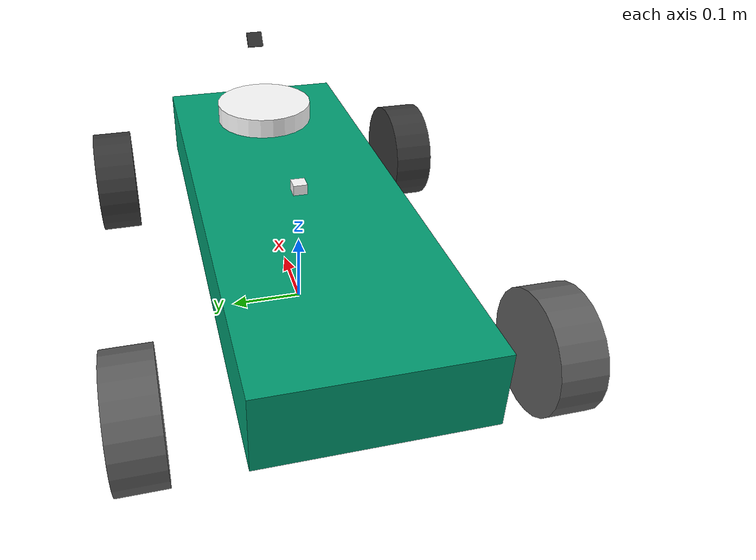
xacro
<?xml version="1.0"?>
<robot xmlns:xacro="http://www.ros.org/wiki/xacro">

    <xacro:property name="body_mass" value="25.0" />
    <xacro:property name="body_x" value="0.75" />  <!-- 길이 (앞뒤) -->
    <xacro:property name="body_y" value="0.28" />   <!-- 폭 (좌우) -->
    <xacro:property name="body_z" value="0.10" />  <!-- 높이 (위아래) -->

    <xacro:property name="wheel_radius" value="0.08" />
    <xacro:property name="wheel_thickness" value="0.06" />
    <xacro:property name="wheel_mass" value="2.0" />
    <xacro:property name="steering_mass" value="0.01" />

    <!-- BASE -->
    <link name="base_footprint">
            <origin xyz="0 0 0" rpy="0 0 0" />
    </link>

    <link name="base_link">
    </link>
    <joint name="base_joint" type="fixed">
        <parent link="base_footprint" />
        <child link="base_link" />
        <origin xyz="0.0 0.0 0.08" rpy="0 0 0" />
    </joint>

    <link name="chassis_link">
        <inertial>
            <origin xyz="0 0 0" rpy="0 0 0" />
            <mass value="2.5" />
            <inertia ixx="${body_mass/12 * (body_y*body_y + body_z*body_z)}"
                ixy="0" ixz="0"
                iyy="${body_mass/12 * (body_x*body_x + body_z*body_z)}" iyz="0"
                izz="${body_mass/12 * (body_x*body_x + body_y*body_y)}" />
        </inertial>
        <visual>
            <origin xyz="0 0 0" rpy="0 0 0" />
            <geometry>
                <box size="${body_x} ${body_y} ${body_z}" />
            </geometry>
        </visual>
        <collision>
            <origin xyz="0 0 0" rpy="0 0 0" />
            <geometry>
                <box size="${body_x} ${body_y} ${body_z}" />
            </geometry>
        </collision>
    </link>
    <joint name="chassis_joint" type="fixed">
        <parent link="base_link" />
        <child link="chassis_link" />
        <origin xyz="0.0 0.0 0.05" rpy="0 0 0" />
    </joint>

    <!-- FRONT LEFT WHEEL -->
    <link name="fr_left_steer_link">
        <inertial>
            <origin xyz="-0.0002776492198312 0.0163539773588368 4.97346169803237E-09" rpy="0 0 0" />
            <mass value="${steering_mass}" />
            <inertia
                ixx="${steering_mass/12*(3*wheel_radius*wheel_radius + wheel_thickness*wheel_thickness)}"
                ixy="0" ixz="0"
                iyy="${steering_mass/12*(3*wheel_radius*wheel_radius + wheel_thickness*wheel_thickness)}"
                iyz="0" izz="${steering_mass/2 * wheel_radius*wheel_radius}" />
        </inertial>
    </link>
    <joint name="fr_left_steer_joint" type="revolute">
        <origin xyz="0.275 0.25 -0.05" rpy="0 0 0" />
        <parent link="chassis_link" />
        <child link="fr_left_steer_link" />
        <axis xyz="0 0 1" />
        <limit upper="0.6109" lower="-0.6109" effort="-1.0" velocity="-1.0" />
    </joint>
    <link name="fr_left_wheel_link">
        <inertial>
            <origin xyz="-3.5837499634539E-10 4.97346158701006E-09 -0.016356334080185" rpy="0 0 0" />
            <mass value="${wheel_mass}" />
            <inertia
                ixx="${wheel_mass/12*(3*wheel_radius*wheel_radius + wheel_thickness*wheel_thickness)}"
                ixy="0" ixz="0"
                iyy="${wheel_mass/12*(3*wheel_radius*wheel_radius + wheel_thickness*wheel_thickness)}"
                iyz="0" izz="${wheel_mass/2 * wheel_radius*wheel_radius}" />
        </inertial>
        <visual>
            <origin xyz="0 0 0" rpy="0 0 0" />
            <geometry>
                <cylinder radius="${wheel_radius}" length="${wheel_thickness}" />
            </geometry>
            <material name="">
                <color rgba="0.223529411764706 0.223529411764706 0.223529411764706 1" />
            </material>
        </visual>
        <collision>
            <origin xyz="0 0 0" rpy="0 0 0" />
            <geometry>
                <cylinder radius="${wheel_radius}" length="${wheel_thickness}" />
            </geometry>
        </collision>
    </link>
    <joint name="fr_left_wheel_joint" type="continuous">
        <origin xyz="0 0 0" rpy="1.5708 0 0" />
        <parent link="fr_left_steer_link" />
        <child link="fr_left_wheel_link" />
        <axis xyz="0 0 -1" />
        <dynamics friction="0.8" damping="0.5" />
        <limit lower="-3.14159" upper="3.14159" effort="200" velocity="-1" />

    </joint>

    <!-- FRONT RIGHT WHEEL -->
    <link name="fr_right_steer_link">
        <inertial>
            <origin xyz="0.000274981985673328 -0.0163540222836661 -3.24802407192237E-11" rpy="0 0 0" />
            <mass value="${steering_mass}" />
            <inertia
                ixx="${steering_mass/12*(3*wheel_radius*wheel_radius + wheel_thickness*wheel_thickness)}"
                ixy="0" ixz="0"
                iyy="${steering_mass/12*(3*wheel_radius*wheel_radius + wheel_thickness*wheel_thickness)}"
                iyz="0" izz="${steering_mass/2 * wheel_radius*wheel_radius}" />
        </inertial>
    </link>
    <joint name="fr_right_steer_joint" type="revolute">
        <origin xyz="0.275 -0.25 -0.05" rpy="0 0 0" />
        <parent link="chassis_link" />
        <child link="fr_right_steer_link" />
        <axis xyz="0 0 1" />
        <limit upper="0.6109" lower="-0.6109" effort="-1.0" velocity="-1.0" />
    </joint>
    <link name="fr_right_wheel_link">
        <inertial>
            <origin xyz="0.00027498198567355 3.24801296969213E-11 -0.0163540222836661" rpy="0 0 0" />
            <mass value="${wheel_mass}" />
            <inertia
                ixx="${wheel_mass/12*(3*wheel_radius*wheel_radius + wheel_thickness*wheel_thickness)}"
                ixy="0" ixz="0"
                iyy="${wheel_mass/12*(3*wheel_radius*wheel_radius + wheel_thickness*wheel_thickness)}"
                iyz="0" izz="${wheel_mass/2 * wheel_radius*wheel_radius}" />
        </inertial>
        <visual>
            <origin xyz="0 0 0" rpy="0 0 0" />
            <geometry>
                <cylinder radius="${wheel_radius}" length="${wheel_thickness}" />
            </geometry>
            <material name="">
                <color rgba="0.223529411764706 0.223529411764706 0.223529411764706 1" />
            </material>
        </visual>
        <collision>
            <origin xyz="0 0 0" rpy="0 0 0" />
            <geometry>
                <cylinder radius="${wheel_radius}" length="${wheel_thickness}" />
            </geometry>
        </collision>
    </link>
    <joint name="fr_right_wheel_joint" type="continuous">
        <origin xyz="0 0 0" rpy="-1.5708 0 0" />
        <parent link="fr_right_steer_link" />
        <child link="fr_right_wheel_link" />
        <axis xyz="0 0 1" />
        <dynamics friction="0.8" damping="0.5" />
        <limit lower="-3.14159" upper="3.14159" effort="200" velocity="-1" />

    </joint>

    <!-- REAR LEFT WHEEL -->
    <link name="re_left_wheel_link">
        <inertial>
            <origin xyz="1.245E-09 1.7252E-06 -0.010284" rpy="0 0 0" />
            <mass value="${wheel_mass}" />
            <inertia
                ixx="${wheel_mass/12*(3*wheel_radius*wheel_radius + wheel_thickness*wheel_thickness)}"
                ixy="0" ixz="0"
                iyy="${wheel_mass/12*(3*wheel_radius*wheel_radius + wheel_thickness*wheel_thickness)}"
                iyz="0" izz="${wheel_mass/2 * wheel_radius*wheel_radius}" />
        </inertial>
        <visual>
            <origin xyz="0 0 0" rpy="0 0 0" />
            <geometry>
                <cylinder radius="${wheel_radius}" length="${wheel_thickness}" />
            </geometry>
            <material name="">
                <color rgba="0.37647 0.37647 0.37647 1" />
            </material>
        </visual>
        <collision>
            <origin xyz="0 0 0" rpy="0 0 0" />
            <geometry>
                <cylinder radius="${wheel_radius}" length="${wheel_thickness}" />
            </geometry>
        </collision>
    </link>
    <joint name="re_left_wheel_joint" type="continuous">
        <origin xyz="-0.275 0.25 -0.05" rpy="1.5708 0 0" />
        <parent link="chassis_link" />
        <child link="re_left_wheel_link" />
        <axis xyz="0 0 -1" />
        <dynamics friction="0.8" damping="0.5" />
        <limit lower="-3.14159" upper="3.14159" effort="70" velocity="-1" />

    </joint>

    <!-- REAR RIGHT WHEEL -->
    <link name="re_right_wheel_link">
        <inertial>
            <origin xyz="0 0 0" rpy="0 0 0" />
            <mass value="${wheel_mass}" />
            <inertia
                ixx="${wheel_mass/12*(3*wheel_radius*wheel_radius + wheel_thickness*wheel_thickness)}"
                ixy="0" ixz="0"
                iyy="${wheel_mass/12*(3*wheel_radius*wheel_radius + wheel_thickness*wheel_thickness)}"
                iyz="0" izz="${wheel_mass/2 * wheel_radius*wheel_radius}" />
        </inertial>
        <visual>
            <origin xyz="0 0 0" rpy="0 0 0" />
            <geometry>
                <cylinder radius="${wheel_radius}" length="${wheel_thickness}" />
            </geometry>
            <material name="">
                <color rgba="0.37647 0.37647 0.37647 1" />
            </material>
        </visual>
        <collision>
            <origin xyz="0 0 0" rpy="0 0 0" />
            <geometry>
                <cylinder radius="${wheel_radius}" length="${wheel_thickness}" />
            </geometry>
        </collision>
    </link>
    <joint name="re_right_wheel_joint" type="continuous">
        <origin xyz="-0.275 -0.25 -0.05" rpy="-1.5708 0 0" />
        <parent link="chassis_link" />
        <child link="re_right_wheel_link" />
        <axis xyz="0 0 1" />

        <dynamics friction="0.8" damping="0.5" />
        <limit lower="-3.14159" upper="3.14159" effort="70" velocity="-1" />
    </joint>

<!-- LASER -->
    <link name="laser_link">
    <visual>
        <geometry>
        <cylinder length="0.03" radius="0.075"/>
        </geometry>
        <origin rpy="0 0 0" xyz="0 0 -0.01"/>
        <material name="rgba(255,255,255,1)">
        <color rgba="1 1 1 1"/>
        </material>
    </visual>
    </link>

    <joint name="laser_joint" type="fixed">
        <parent link="chassis_link"/>
        <child link="laser_link"/>
        <origin rpy="0 0 0" xyz="0.25 0 0.075"/>
    </joint>

<!-- IMU -->
    <link name="imu_link">
        <visual>
            <geometry>
        <box size="0.02 0.02 0.02"/>
            </geometry>
            <origin rpy="0 0 0" xyz="0 0 -0.01"/>
            <material name="rgba(255,255,255,1)">
            <color rgba="1 1 1 1"/>
            </material>
        </visual>
    </link>

    <joint name="imu_joint" type="fixed">
        <parent link="chassis_link"/>
        <child link="imu_link"/>
        <origin rpy="0 0 0" xyz="0 0 0.065"/>
    </joint>

<!-- CAMERA -->
    <link name="camera_link">
        <visual>
            <geometry>
                <box size="0.002 0.025 0.025"/>
            </geometry>
            <origin rpy="0 0 0" xyz="0 0 0"/>
            <material name="">
                <color rgba="0.2 0.2 0.2 1"/>
            </material>
        </visual>
        <collision>
            <origin rpy="0 0 0" xyz="0 0 0"/>
            <geometry>
                <box size="0.002 0.025 0.025"/>
            </geometry>
        </collision>
        <inertial>
            <origin xyz="0 0 0" rpy="0 0 0"/>
            <mass value="0.01"/>
            <inertia ixx="0.001" ixy="0.0" ixz="0.0" iyy="0.001" iyz="0.0" izz="0.001"/>
        </inertial>
    </link>

    <joint name="camera_joint" type="fixed">
        <parent link="chassis_link"/>
        <child link="camera_link"/>
        <origin rpy="0 0.698132 0" xyz="0.32 0 0.16"/>
    </joint>

</robot>
